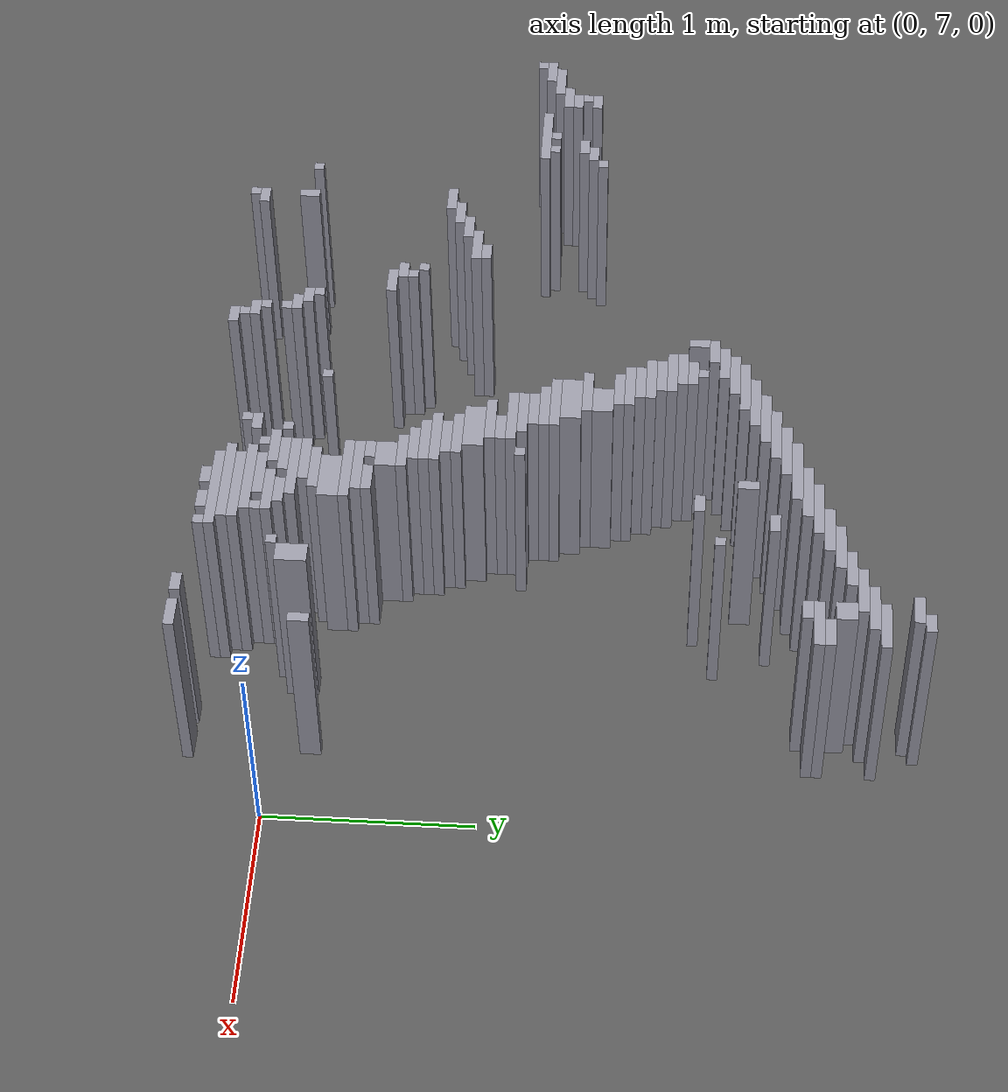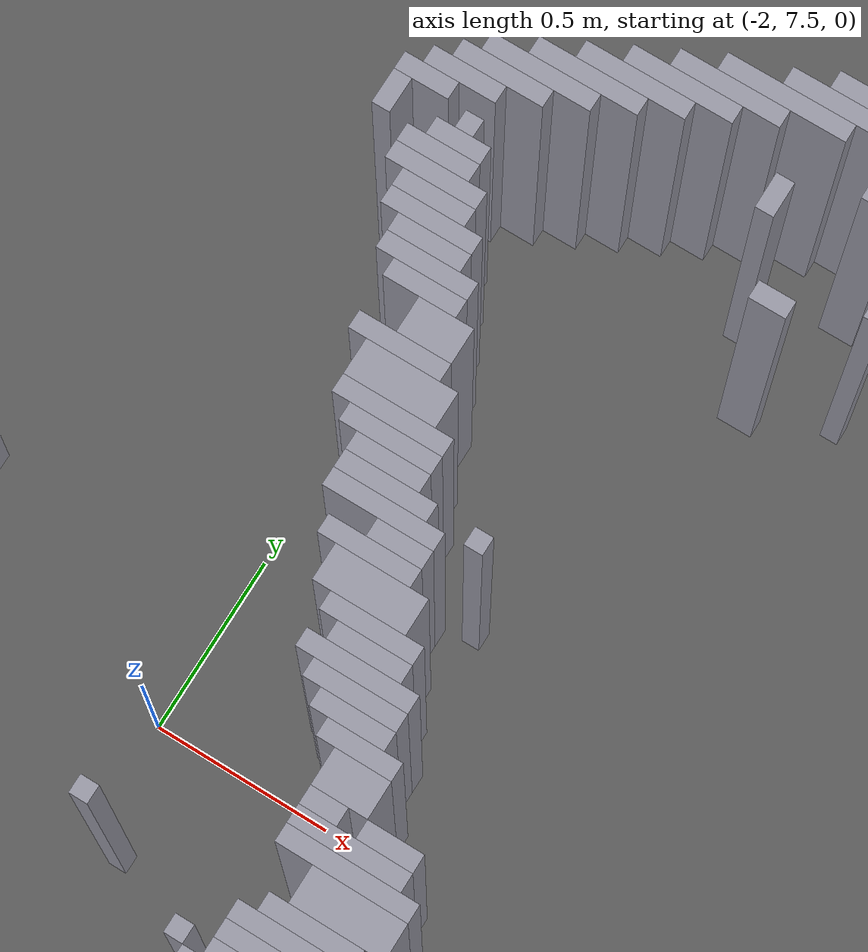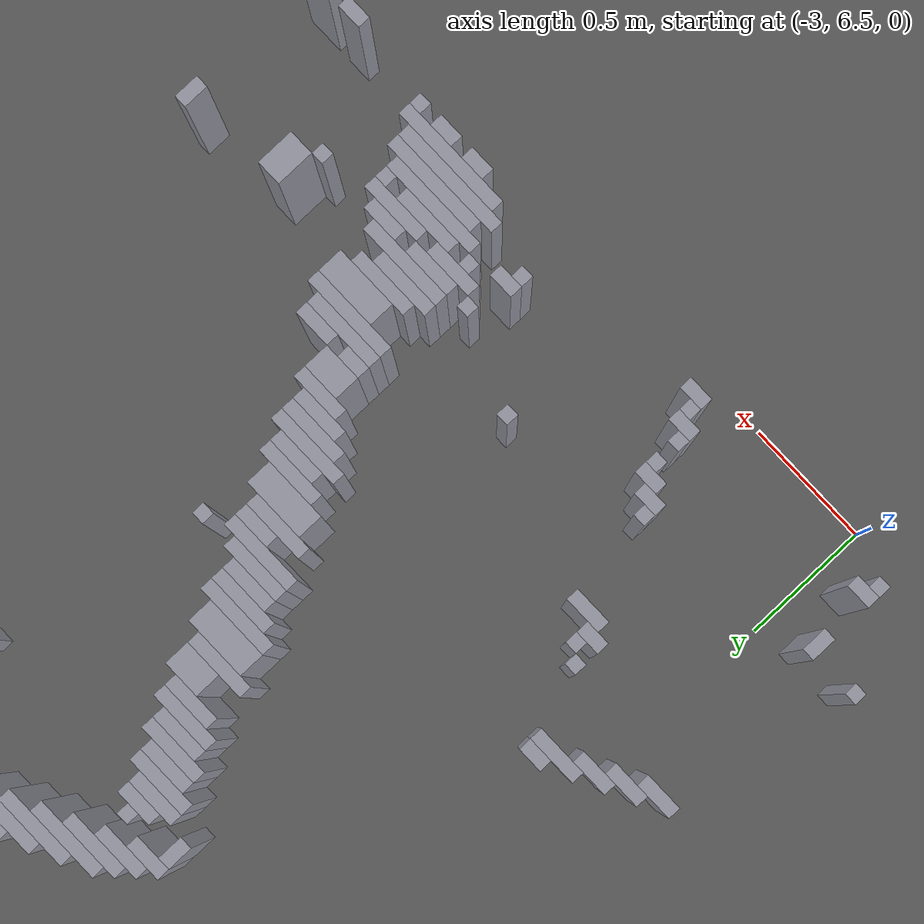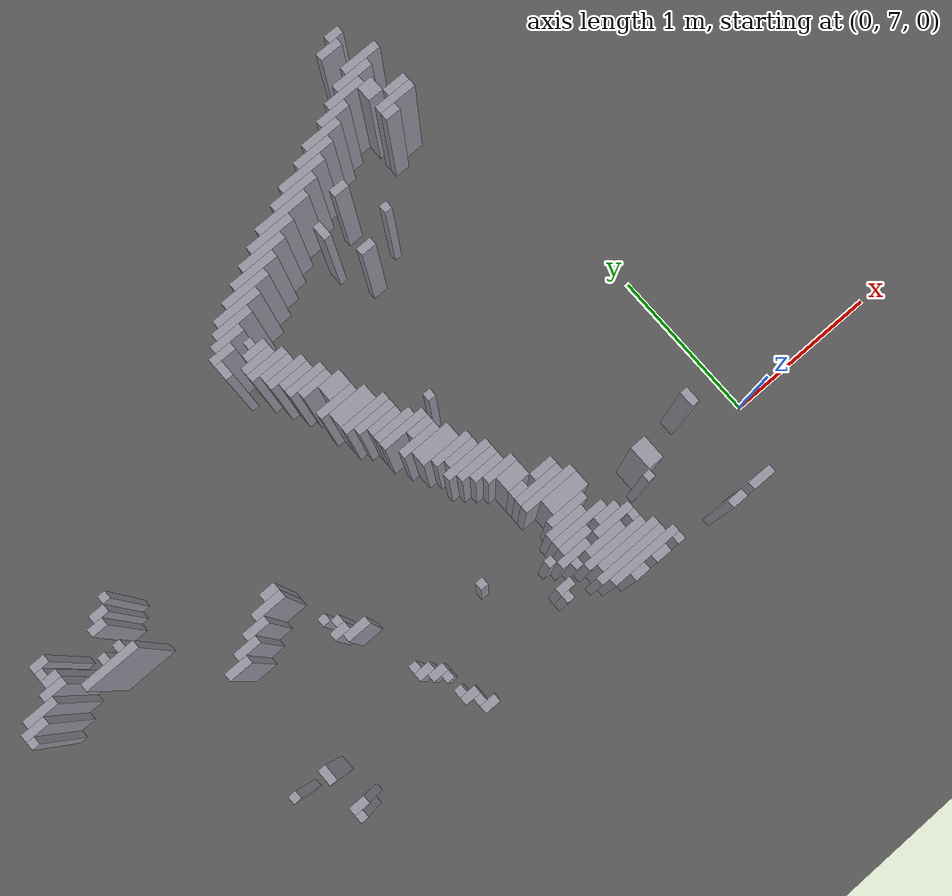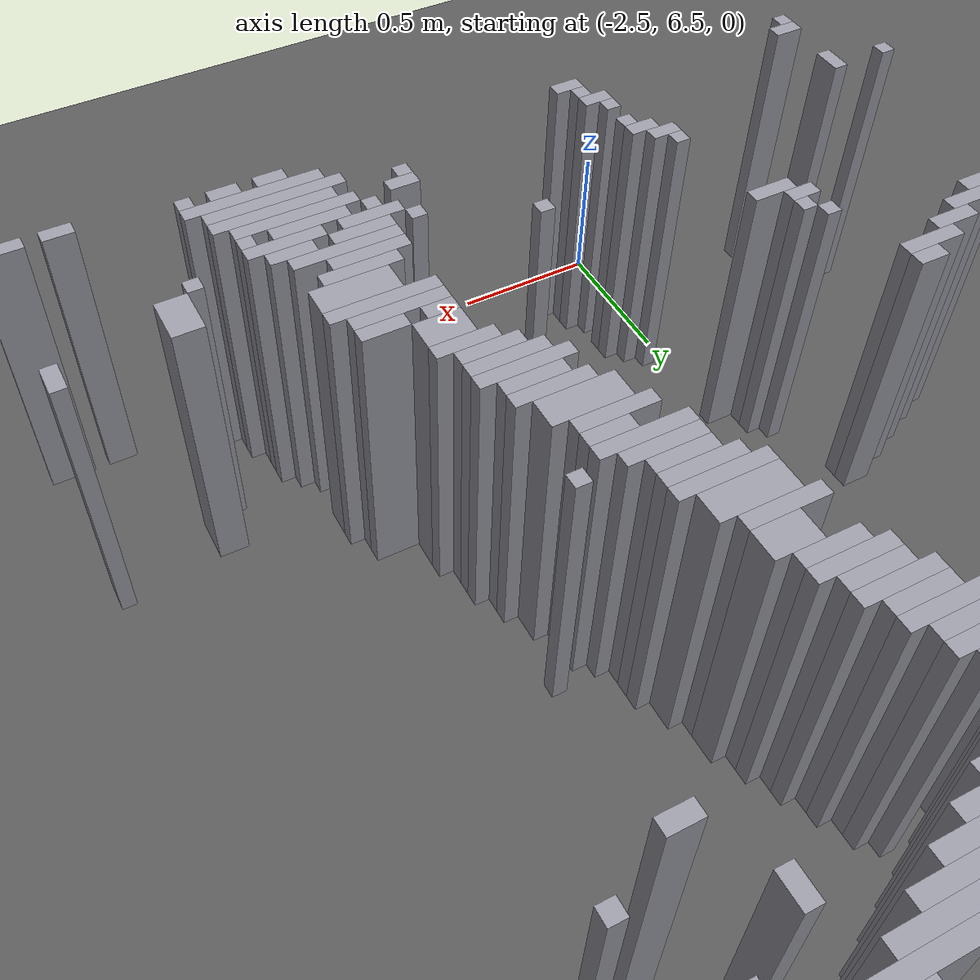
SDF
<sdf version="1.8">
 <world name="dimi">
  <model name="ground">
   <static>true</static>
   <link name="ground_link">
    <collision name="c"><geometry><plane><normal>0 0 1</normal><size>60 60</size></plane></geometry></collision>
    <visual name="v">
     <geometry><plane><normal>0 0 1</normal><size>60 60</size></plane></geometry>
     <material><ambient>0.3 0.3 0.3 1</ambient><diffuse>0.35 0.35 0.35 1</diffuse></material>
    </visual>
   </link>
  </model>
  <model name="walls">
   <static>true</static>
   <link name="wall_47">
    <pose>-0.5170 10.0200 0.5000 0 0 0</pose>
    <collision name="c"><geometry><box><size>0.1000 0.0500 1.0000</size></box></geometry></collision>
    <visual name="v">
     <geometry><box><size>0.1000 0.0500 1.0000</size></box></geometry>
     <material><ambient>0.5 0.5 0.55 1</ambient><diffuse>0.6 0.6 0.65 1</diffuse></material>
    </visual>
   </link>
   <link name="wall_51">
    <pose>-0.5920 9.9700 0.5000 0 0 0</pose>
    <collision name="c"><geometry><box><size>0.1500 0.0500 1.0000</size></box></geometry></collision>
    <visual name="v">
     <geometry><box><size>0.1500 0.0500 1.0000</size></box></geometry>
     <material><ambient>0.5 0.5 0.55 1</ambient><diffuse>0.6 0.6 0.65 1</diffuse></material>
    </visual>
   </link>
   <link name="wall_61">
    <pose>-0.4920 9.8200 0.5000 0 0 0</pose>
    <collision name="c"><geometry><box><size>0.2500 0.0500 1.0000</size></box></geometry></collision>
    <visual name="v">
     <geometry><box><size>0.2500 0.0500 1.0000</size></box></geometry>
     <material><ambient>0.5 0.5 0.55 1</ambient><diffuse>0.6 0.6 0.65 1</diffuse></material>
    </visual>
   </link>
   <link name="wall_64">
    <pose>-0.5920 9.7700 0.5000 0 0 0</pose>
    <collision name="c"><geometry><box><size>0.2500 0.0500 1.0000</size></box></geometry></collision>
    <visual name="v">
     <geometry><box><size>0.2500 0.0500 1.0000</size></box></geometry>
     <material><ambient>0.5 0.5 0.55 1</ambient><diffuse>0.6 0.6 0.65 1</diffuse></material>
    </visual>
   </link>
   <link name="wall_67">
    <pose>-0.6920 9.7200 0.5000 0 0 0</pose>
    <collision name="c"><geometry><box><size>0.2500 0.0500 1.0000</size></box></geometry></collision>
    <visual name="v">
     <geometry><box><size>0.2500 0.0500 1.0000</size></box></geometry>
     <material><ambient>0.5 0.5 0.55 1</ambient><diffuse>0.6 0.6 0.65 1</diffuse></material>
    </visual>
   </link>
   <link name="wall_70">
    <pose>-0.8170 9.6700 0.5000 0 0 0</pose>
    <collision name="c"><geometry><box><size>0.2000 0.0500 1.0000</size></box></geometry></collision>
    <visual name="v">
     <geometry><box><size>0.2000 0.0500 1.0000</size></box></geometry>
     <material><ambient>0.5 0.5 0.55 1</ambient><diffuse>0.6 0.6 0.65 1</diffuse></material>
    </visual>
   </link>
   <link name="wall_71">
    <pose>-0.5670 9.6450 0.5000 0 0 0</pose>
    <collision name="c"><geometry><box><size>0.1000 0.1000 1.0000</size></box></geometry></collision>
    <visual name="v">
     <geometry><box><size>0.1000 0.1000 1.0000</size></box></geometry>
     <material><ambient>0.5 0.5 0.55 1</ambient><diffuse>0.6 0.6 0.65 1</diffuse></material>
    </visual>
   </link>
   <link name="wall_76">
    <pose>-0.9420 9.6200 0.5000 0 0 0</pose>
    <collision name="c"><geometry><box><size>0.2500 0.0500 1.0000</size></box></geometry></collision>
    <visual name="v">
     <geometry><box><size>0.2500 0.0500 1.0000</size></box></geometry>
     <material><ambient>0.5 0.5 0.55 1</ambient><diffuse>0.6 0.6 0.65 1</diffuse></material>
    </visual>
   </link>
   <link name="wall_81">
    <pose>-1.0420 9.5700 0.5000 0 0 0</pose>
    <collision name="c"><geometry><box><size>0.2500 0.0500 1.0000</size></box></geometry></collision>
    <visual name="v">
     <geometry><box><size>0.2500 0.0500 1.0000</size></box></geometry>
     <material><ambient>0.5 0.5 0.55 1</ambient><diffuse>0.6 0.6 0.65 1</diffuse></material>
    </visual>
   </link>
   <link name="wall_82">
    <pose>-0.4420 9.5700 0.5000 0 0 0</pose>
    <collision name="c"><geometry><box><size>0.1500 0.0500 1.0000</size></box></geometry></collision>
    <visual name="v">
     <geometry><box><size>0.1500 0.0500 1.0000</size></box></geometry>
     <material><ambient>0.5 0.5 0.55 1</ambient><diffuse>0.6 0.6 0.65 1</diffuse></material>
    </visual>
   </link>
   <link name="wall_85">
    <pose>-1.1670 9.5200 0.5000 0 0 0</pose>
    <collision name="c"><geometry><box><size>0.3000 0.0500 1.0000</size></box></geometry></collision>
    <visual name="v">
     <geometry><box><size>0.3000 0.0500 1.0000</size></box></geometry>
     <material><ambient>0.5 0.5 0.55 1</ambient><diffuse>0.6 0.6 0.65 1</diffuse></material>
    </visual>
   </link>
   <link name="wall_86">
    <pose>-0.4920 9.5200 0.5000 0 0 0</pose>
    <collision name="c"><geometry><box><size>0.2500 0.0500 1.0000</size></box></geometry></collision>
    <visual name="v">
     <geometry><box><size>0.2500 0.0500 1.0000</size></box></geometry>
     <material><ambient>0.5 0.5 0.55 1</ambient><diffuse>0.6 0.6 0.65 1</diffuse></material>
    </visual>
   </link>
   <link name="wall_89">
    <pose>-1.2670 9.4700 0.5000 0 0 0</pose>
    <collision name="c"><geometry><box><size>0.3000 0.0500 1.0000</size></box></geometry></collision>
    <visual name="v">
     <geometry><box><size>0.3000 0.0500 1.0000</size></box></geometry>
     <material><ambient>0.5 0.5 0.55 1</ambient><diffuse>0.6 0.6 0.65 1</diffuse></material>
    </visual>
   </link>
   <link name="wall_90">
    <pose>-0.5670 9.4700 0.5000 0 0 0</pose>
    <collision name="c"><geometry><box><size>0.1000 0.0500 1.0000</size></box></geometry></collision>
    <visual name="v">
     <geometry><box><size>0.1000 0.0500 1.0000</size></box></geometry>
     <material><ambient>0.5 0.5 0.55 1</ambient><diffuse>0.6 0.6 0.65 1</diffuse></material>
    </visual>
   </link>
   <link name="wall_93">
    <pose>-1.3920 9.4200 0.5000 0 0 0</pose>
    <collision name="c"><geometry><box><size>0.3500 0.0500 1.0000</size></box></geometry></collision>
    <visual name="v">
     <geometry><box><size>0.3500 0.0500 1.0000</size></box></geometry>
     <material><ambient>0.5 0.5 0.55 1</ambient><diffuse>0.6 0.6 0.65 1</diffuse></material>
    </visual>
   </link>
   <link name="wall_95">
    <pose>-1.5170 9.3700 0.5000 0 0 0</pose>
    <collision name="c"><geometry><box><size>0.3000 0.0500 1.0000</size></box></geometry></collision>
    <visual name="v">
     <geometry><box><size>0.3000 0.0500 1.0000</size></box></geometry>
     <material><ambient>0.5 0.5 0.55 1</ambient><diffuse>0.6 0.6 0.65 1</diffuse></material>
    </visual>
   </link>
   <link name="wall_97">
    <pose>-1.6170 9.3200 0.5000 0 0 0</pose>
    <collision name="c"><geometry><box><size>0.3000 0.0500 1.0000</size></box></geometry></collision>
    <visual name="v">
     <geometry><box><size>0.3000 0.0500 1.0000</size></box></geometry>
     <material><ambient>0.5 0.5 0.55 1</ambient><diffuse>0.6 0.6 0.65 1</diffuse></material>
    </visual>
   </link>
   <link name="wall_98">
    <pose>-1.0670 9.3200 0.5000 0 0 0</pose>
    <collision name="c"><geometry><box><size>0.1000 0.0500 1.0000</size></box></geometry></collision>
    <visual name="v">
     <geometry><box><size>0.1000 0.0500 1.0000</size></box></geometry>
     <material><ambient>0.5 0.5 0.55 1</ambient><diffuse>0.6 0.6 0.65 1</diffuse></material>
    </visual>
   </link>
   <link name="wall_101">
    <pose>-1.7170 9.2700 0.5000 0 0 0</pose>
    <collision name="c"><geometry><box><size>0.3000 0.0500 1.0000</size></box></geometry></collision>
    <visual name="v">
     <geometry><box><size>0.3000 0.0500 1.0000</size></box></geometry>
     <material><ambient>0.5 0.5 0.55 1</ambient><diffuse>0.6 0.6 0.65 1</diffuse></material>
    </visual>
   </link>
   <link name="wall_104">
    <pose>-1.8170 9.2200 0.5000 0 0 0</pose>
    <collision name="c"><geometry><box><size>0.3000 0.0500 1.0000</size></box></geometry></collision>
    <visual name="v">
     <geometry><box><size>0.3000 0.0500 1.0000</size></box></geometry>
     <material><ambient>0.5 0.5 0.55 1</ambient><diffuse>0.6 0.6 0.65 1</diffuse></material>
    </visual>
   </link>
   <link name="wall_105">
    <pose>-1.2920 9.1950 0.5000 0 0 0</pose>
    <collision name="c"><geometry><box><size>0.0500 0.1000 1.0000</size></box></geometry></collision>
    <visual name="v">
     <geometry><box><size>0.0500 0.1000 1.0000</size></box></geometry>
     <material><ambient>0.5 0.5 0.55 1</ambient><diffuse>0.6 0.6 0.65 1</diffuse></material>
    </visual>
   </link>
   <link name="wall_108">
    <pose>-1.9170 9.1700 0.5000 0 0 0</pose>
    <collision name="c"><geometry><box><size>0.3000 0.0500 1.0000</size></box></geometry></collision>
    <visual name="v">
     <geometry><box><size>0.3000 0.0500 1.0000</size></box></geometry>
     <material><ambient>0.5 0.5 0.55 1</ambient><diffuse>0.6 0.6 0.65 1</diffuse></material>
    </visual>
   </link>
   <link name="wall_111">
    <pose>-1.9920 9.1200 0.5000 0 0 0</pose>
    <collision name="c"><geometry><box><size>0.2500 0.0500 1.0000</size></box></geometry></collision>
    <visual name="v">
     <geometry><box><size>0.2500 0.0500 1.0000</size></box></geometry>
     <material><ambient>0.5 0.5 0.55 1</ambient><diffuse>0.6 0.6 0.65 1</diffuse></material>
    </visual>
   </link>
   <link name="wall_114">
    <pose>-2.0670 9.0700 0.5000 0 0 0</pose>
    <collision name="c"><geometry><box><size>0.2000 0.0500 1.0000</size></box></geometry></collision>
    <visual name="v">
     <geometry><box><size>0.2000 0.0500 1.0000</size></box></geometry>
     <material><ambient>0.5 0.5 0.55 1</ambient><diffuse>0.6 0.6 0.65 1</diffuse></material>
    </visual>
   </link>
   <link name="wall_115">
    <pose>-0.9420 9.0700 0.5000 0 0 0</pose>
    <collision name="c"><geometry><box><size>0.0500 0.0500 1.0000</size></box></geometry></collision>
    <visual name="v">
     <geometry><box><size>0.0500 0.0500 1.0000</size></box></geometry>
     <material><ambient>0.5 0.5 0.55 1</ambient><diffuse>0.6 0.6 0.65 1</diffuse></material>
    </visual>
   </link>
   <link name="wall_118">
    <pose>-2.1420 9.0200 0.5000 0 0 0</pose>
    <collision name="c"><geometry><box><size>0.1500 0.0500 1.0000</size></box></geometry></collision>
    <visual name="v">
     <geometry><box><size>0.1500 0.0500 1.0000</size></box></geometry>
     <material><ambient>0.5 0.5 0.55 1</ambient><diffuse>0.6 0.6 0.65 1</diffuse></material>
    </visual>
   </link>
   <link name="wall_122">
    <pose>-2.1920 8.9450 0.5000 0 0 0</pose>
    <collision name="c"><geometry><box><size>0.0500 0.1000 1.0000</size></box></geometry></collision>
    <visual name="v">
     <geometry><box><size>0.0500 0.1000 1.0000</size></box></geometry>
     <material><ambient>0.5 0.5 0.55 1</ambient><diffuse>0.6 0.6 0.65 1</diffuse></material>
    </visual>
   </link>
   <link name="wall_123">
    <pose>-1.9920 8.9700 0.5000 0 0 0</pose>
    <collision name="c"><geometry><box><size>0.0500 0.0500 1.0000</size></box></geometry></collision>
    <visual name="v">
     <geometry><box><size>0.0500 0.0500 1.0000</size></box></geometry>
     <material><ambient>0.5 0.5 0.55 1</ambient><diffuse>0.6 0.6 0.65 1</diffuse></material>
    </visual>
   </link>
   <link name="wall_124">
    <pose>-1.1670 8.9700 0.5000 0 0 0</pose>
    <collision name="c"><geometry><box><size>0.1000 0.0500 1.0000</size></box></geometry></collision>
    <visual name="v">
     <geometry><box><size>0.1000 0.0500 1.0000</size></box></geometry>
     <material><ambient>0.5 0.5 0.55 1</ambient><diffuse>0.6 0.6 0.65 1</diffuse></material>
    </visual>
   </link>
   <link name="wall_127">
    <pose>-1.9920 8.9200 0.5000 0 0 0</pose>
    <collision name="c"><geometry><box><size>0.1500 0.0500 1.0000</size></box></geometry></collision>
    <visual name="v">
     <geometry><box><size>0.1500 0.0500 1.0000</size></box></geometry>
     <material><ambient>0.5 0.5 0.55 1</ambient><diffuse>0.6 0.6 0.65 1</diffuse></material>
    </visual>
   </link>
   <link name="wall_132">
    <pose>-2.0170 8.8700 0.5000 0 0 0</pose>
    <collision name="c"><geometry><box><size>0.2000 0.0500 1.0000</size></box></geometry></collision>
    <visual name="v">
     <geometry><box><size>0.2000 0.0500 1.0000</size></box></geometry>
     <material><ambient>0.5 0.5 0.55 1</ambient><diffuse>0.6 0.6 0.65 1</diffuse></material>
    </visual>
   </link>
   <link name="wall_136">
    <pose>-1.9920 8.8200 0.5000 0 0 0</pose>
    <collision name="c"><geometry><box><size>0.2500 0.0500 1.0000</size></box></geometry></collision>
    <visual name="v">
     <geometry><box><size>0.2500 0.0500 1.0000</size></box></geometry>
     <material><ambient>0.5 0.5 0.55 1</ambient><diffuse>0.6 0.6 0.65 1</diffuse></material>
    </visual>
   </link>
   <link name="wall_141">
    <pose>-1.9670 8.7700 0.5000 0 0 0</pose>
    <collision name="c"><geometry><box><size>0.2000 0.0500 1.0000</size></box></geometry></collision>
    <visual name="v">
     <geometry><box><size>0.2000 0.0500 1.0000</size></box></geometry>
     <material><ambient>0.5 0.5 0.55 1</ambient><diffuse>0.6 0.6 0.65 1</diffuse></material>
    </visual>
   </link>
   <link name="wall_146">
    <pose>-1.9420 8.7200 0.5000 0 0 0</pose>
    <collision name="c"><geometry><box><size>0.2500 0.0500 1.0000</size></box></geometry></collision>
    <visual name="v">
     <geometry><box><size>0.2500 0.0500 1.0000</size></box></geometry>
     <material><ambient>0.5 0.5 0.55 1</ambient><diffuse>0.6 0.6 0.65 1</diffuse></material>
    </visual>
   </link>
   <link name="wall_150">
    <pose>-1.9170 8.6700 0.5000 0 0 0</pose>
    <collision name="c"><geometry><box><size>0.2000 0.0500 1.0000</size></box></geometry></collision>
    <visual name="v">
     <geometry><box><size>0.2000 0.0500 1.0000</size></box></geometry>
     <material><ambient>0.5 0.5 0.55 1</ambient><diffuse>0.6 0.6 0.65 1</diffuse></material>
    </visual>
   </link>
   <link name="wall_156">
    <pose>-1.8920 8.6200 0.5000 0 0 0</pose>
    <collision name="c"><geometry><box><size>0.2500 0.0500 1.0000</size></box></geometry></collision>
    <visual name="v">
     <geometry><box><size>0.2500 0.0500 1.0000</size></box></geometry>
     <material><ambient>0.5 0.5 0.55 1</ambient><diffuse>0.6 0.6 0.65 1</diffuse></material>
    </visual>
   </link>
   <link name="wall_162">
    <pose>-1.8670 8.5700 0.5000 0 0 0</pose>
    <collision name="c"><geometry><box><size>0.2000 0.0500 1.0000</size></box></geometry></collision>
    <visual name="v">
     <geometry><box><size>0.2000 0.0500 1.0000</size></box></geometry>
     <material><ambient>0.5 0.5 0.55 1</ambient><diffuse>0.6 0.6 0.65 1</diffuse></material>
    </visual>
   </link>
   <link name="wall_168">
    <pose>-1.7920 8.4950 0.5000 0 0 0</pose>
    <collision name="c"><geometry><box><size>0.1500 0.1000 1.0000</size></box></geometry></collision>
    <visual name="v">
     <geometry><box><size>0.1500 0.1000 1.0000</size></box></geometry>
     <material><ambient>0.5 0.5 0.55 1</ambient><diffuse>0.6 0.6 0.65 1</diffuse></material>
    </visual>
   </link>
   <link name="wall_175">
    <pose>-3.4420 8.4200 0.5000 0 0 0</pose>
    <collision name="c"><geometry><box><size>0.0500 0.0500 1.0000</size></box></geometry></collision>
    <visual name="v">
     <geometry><box><size>0.0500 0.0500 1.0000</size></box></geometry>
     <material><ambient>0.5 0.5 0.55 1</ambient><diffuse>0.6 0.6 0.65 1</diffuse></material>
    </visual>
   </link>
   <link name="wall_176">
    <pose>-1.8420 8.4200 0.5000 0 0 0</pose>
    <collision name="c"><geometry><box><size>0.2500 0.0500 1.0000</size></box></geometry></collision>
    <visual name="v">
     <geometry><box><size>0.2500 0.0500 1.0000</size></box></geometry>
     <material><ambient>0.5 0.5 0.55 1</ambient><diffuse>0.6 0.6 0.65 1</diffuse></material>
    </visual>
   </link>
   <link name="wall_181">
    <pose>-3.9170 8.3700 0.5000 0 0 0</pose>
    <collision name="c"><geometry><box><size>0.1000 0.0500 1.0000</size></box></geometry></collision>
    <visual name="v">
     <geometry><box><size>0.1000 0.0500 1.0000</size></box></geometry>
     <material><ambient>0.5 0.5 0.55 1</ambient><diffuse>0.6 0.6 0.65 1</diffuse></material>
    </visual>
   </link>
   <link name="wall_182">
    <pose>-3.5170 8.3700 0.5000 0 0 0</pose>
    <collision name="c"><geometry><box><size>0.1000 0.0500 1.0000</size></box></geometry></collision>
    <visual name="v">
     <geometry><box><size>0.1000 0.0500 1.0000</size></box></geometry>
     <material><ambient>0.5 0.5 0.55 1</ambient><diffuse>0.6 0.6 0.65 1</diffuse></material>
    </visual>
   </link>
   <link name="wall_183">
    <pose>-1.7920 8.3450 0.5000 0 0 0</pose>
    <collision name="c"><geometry><box><size>0.2500 0.1000 1.0000</size></box></geometry></collision>
    <visual name="v">
     <geometry><box><size>0.2500 0.1000 1.0000</size></box></geometry>
     <material><ambient>0.5 0.5 0.55 1</ambient><diffuse>0.6 0.6 0.65 1</diffuse></material>
    </visual>
   </link>
   <link name="wall_189">
    <pose>-3.9420 8.3200 0.5000 0 0 0</pose>
    <collision name="c"><geometry><box><size>0.0500 0.0500 1.0000</size></box></geometry></collision>
    <visual name="v">
     <geometry><box><size>0.0500 0.0500 1.0000</size></box></geometry>
     <material><ambient>0.5 0.5 0.55 1</ambient><diffuse>0.6 0.6 0.65 1</diffuse></material>
    </visual>
   </link>
   <link name="wall_190">
    <pose>-3.5670 8.3200 0.5000 0 0 0</pose>
    <collision name="c"><geometry><box><size>0.1000 0.0500 1.0000</size></box></geometry></collision>
    <visual name="v">
     <geometry><box><size>0.1000 0.0500 1.0000</size></box></geometry>
     <material><ambient>0.5 0.5 0.55 1</ambient><diffuse>0.6 0.6 0.65 1</diffuse></material>
    </visual>
   </link>
   <link name="wall_195">
    <pose>-3.9170 8.2700 0.5000 0 0 0</pose>
    <collision name="c"><geometry><box><size>0.1000 0.0500 1.0000</size></box></geometry></collision>
    <visual name="v">
     <geometry><box><size>0.1000 0.0500 1.0000</size></box></geometry>
     <material><ambient>0.5 0.5 0.55 1</ambient><diffuse>0.6 0.6 0.65 1</diffuse></material>
    </visual>
   </link>
   <link name="wall_196">
    <pose>-1.7670 8.2700 0.5000 0 0 0</pose>
    <collision name="c"><geometry><box><size>0.3000 0.0500 1.0000</size></box></geometry></collision>
    <visual name="v">
     <geometry><box><size>0.3000 0.0500 1.0000</size></box></geometry>
     <material><ambient>0.5 0.5 0.55 1</ambient><diffuse>0.6 0.6 0.65 1</diffuse></material>
    </visual>
   </link>
   <link name="wall_202">
    <pose>-3.9420 8.2200 0.5000 0 0 0</pose>
    <collision name="c"><geometry><box><size>0.1500 0.0500 1.0000</size></box></geometry></collision>
    <visual name="v">
     <geometry><box><size>0.1500 0.0500 1.0000</size></box></geometry>
     <material><ambient>0.5 0.5 0.55 1</ambient><diffuse>0.6 0.6 0.65 1</diffuse></material>
    </visual>
   </link>
   <link name="wall_203">
    <pose>-1.7420 8.2200 0.5000 0 0 0</pose>
    <collision name="c"><geometry><box><size>0.2500 0.0500 1.0000</size></box></geometry></collision>
    <visual name="v">
     <geometry><box><size>0.2500 0.0500 1.0000</size></box></geometry>
     <material><ambient>0.5 0.5 0.55 1</ambient><diffuse>0.6 0.6 0.65 1</diffuse></material>
    </visual>
   </link>
   <link name="wall_208">
    <pose>-4.0670 8.1700 0.5000 0 0 0</pose>
    <collision name="c"><geometry><box><size>0.2000 0.0500 1.0000</size></box></geometry></collision>
    <visual name="v">
     <geometry><box><size>0.2000 0.0500 1.0000</size></box></geometry>
     <material><ambient>0.5 0.5 0.55 1</ambient><diffuse>0.6 0.6 0.65 1</diffuse></material>
    </visual>
   </link>
   <link name="wall_209">
    <pose>-3.6420 8.1700 0.5000 0 0 0</pose>
    <collision name="c"><geometry><box><size>0.0500 0.0500 1.0000</size></box></geometry></collision>
    <visual name="v">
     <geometry><box><size>0.0500 0.0500 1.0000</size></box></geometry>
     <material><ambient>0.5 0.5 0.55 1</ambient><diffuse>0.6 0.6 0.65 1</diffuse></material>
    </visual>
   </link>
   <link name="wall_210">
    <pose>-3.5420 8.1700 0.5000 0 0 0</pose>
    <collision name="c"><geometry><box><size>0.0500 0.0500 1.0000</size></box></geometry></collision>
    <visual name="v">
     <geometry><box><size>0.0500 0.0500 1.0000</size></box></geometry>
     <material><ambient>0.5 0.5 0.55 1</ambient><diffuse>0.6 0.6 0.65 1</diffuse></material>
    </visual>
   </link>
   <link name="wall_211">
    <pose>-1.7170 8.1700 0.5000 0 0 0</pose>
    <collision name="c"><geometry><box><size>0.2000 0.0500 1.0000</size></box></geometry></collision>
    <visual name="v">
     <geometry><box><size>0.2000 0.0500 1.0000</size></box></geometry>
     <material><ambient>0.5 0.5 0.55 1</ambient><diffuse>0.6 0.6 0.65 1</diffuse></material>
    </visual>
   </link>
   <link name="wall_215">
    <pose>-4.1420 8.1200 0.5000 0 0 0</pose>
    <collision name="c"><geometry><box><size>0.1500 0.0500 1.0000</size></box></geometry></collision>
    <visual name="v">
     <geometry><box><size>0.1500 0.0500 1.0000</size></box></geometry>
     <material><ambient>0.5 0.5 0.55 1</ambient><diffuse>0.6 0.6 0.65 1</diffuse></material>
    </visual>
   </link>
   <link name="wall_216">
    <pose>-3.6420 8.1200 0.5000 0 0 0</pose>
    <collision name="c"><geometry><box><size>0.3500 0.0500 1.0000</size></box></geometry></collision>
    <visual name="v">
     <geometry><box><size>0.3500 0.0500 1.0000</size></box></geometry>
     <material><ambient>0.5 0.5 0.55 1</ambient><diffuse>0.6 0.6 0.65 1</diffuse></material>
    </visual>
   </link>
   <link name="wall_217">
    <pose>-1.6920 8.1200 0.5000 0 0 0</pose>
    <collision name="c"><geometry><box><size>0.2500 0.0500 1.0000</size></box></geometry></collision>
    <visual name="v">
     <geometry><box><size>0.2500 0.0500 1.0000</size></box></geometry>
     <material><ambient>0.5 0.5 0.55 1</ambient><diffuse>0.6 0.6 0.65 1</diffuse></material>
    </visual>
   </link>
   <link name="wall_218">
    <pose>-1.4420 8.1200 0.5000 0 0 0</pose>
    <collision name="c"><geometry><box><size>0.0500 0.0500 1.0000</size></box></geometry></collision>
    <visual name="v">
     <geometry><box><size>0.0500 0.0500 1.0000</size></box></geometry>
     <material><ambient>0.5 0.5 0.55 1</ambient><diffuse>0.6 0.6 0.65 1</diffuse></material>
    </visual>
   </link>
   <link name="wall_222">
    <pose>-4.1920 8.0700 0.5000 0 0 0</pose>
    <collision name="c"><geometry><box><size>0.0500 0.0500 1.0000</size></box></geometry></collision>
    <visual name="v">
     <geometry><box><size>0.0500 0.0500 1.0000</size></box></geometry>
     <material><ambient>0.5 0.5 0.55 1</ambient><diffuse>0.6 0.6 0.65 1</diffuse></material>
    </visual>
   </link>
   <link name="wall_223">
    <pose>-1.6670 8.0700 0.5000 0 0 0</pose>
    <collision name="c"><geometry><box><size>0.3000 0.0500 1.0000</size></box></geometry></collision>
    <visual name="v">
     <geometry><box><size>0.3000 0.0500 1.0000</size></box></geometry>
     <material><ambient>0.5 0.5 0.55 1</ambient><diffuse>0.6 0.6 0.65 1</diffuse></material>
    </visual>
   </link>
   <link name="wall_229">
    <pose>-1.5920 8.0200 0.5000 0 0 0</pose>
    <collision name="c"><geometry><box><size>0.1500 0.0500 1.0000</size></box></geometry></collision>
    <visual name="v">
     <geometry><box><size>0.1500 0.0500 1.0000</size></box></geometry>
     <material><ambient>0.5 0.5 0.55 1</ambient><diffuse>0.6 0.6 0.65 1</diffuse></material>
    </visual>
   </link>
   <link name="wall_233">
    <pose>-1.6420 7.9700 0.5000 0 0 0</pose>
    <collision name="c"><geometry><box><size>0.2500 0.0500 1.0000</size></box></geometry></collision>
    <visual name="v">
     <geometry><box><size>0.2500 0.0500 1.0000</size></box></geometry>
     <material><ambient>0.5 0.5 0.55 1</ambient><diffuse>0.6 0.6 0.65 1</diffuse></material>
    </visual>
   </link>
   <link name="wall_237">
    <pose>-1.5920 7.8950 0.5000 0 0 0</pose>
    <collision name="c"><geometry><box><size>0.2500 0.1000 1.0000</size></box></geometry></collision>
    <visual name="v">
     <geometry><box><size>0.2500 0.1000 1.0000</size></box></geometry>
     <material><ambient>0.5 0.5 0.55 1</ambient><diffuse>0.6 0.6 0.65 1</diffuse></material>
    </visual>
   </link>
   <link name="wall_242">
    <pose>-2.7670 7.8700 0.5000 0 0 0</pose>
    <collision name="c"><geometry><box><size>0.1000 0.0500 1.0000</size></box></geometry></collision>
    <visual name="v">
     <geometry><box><size>0.1000 0.0500 1.0000</size></box></geometry>
     <material><ambient>0.5 0.5 0.55 1</ambient><diffuse>0.6 0.6 0.65 1</diffuse></material>
    </visual>
   </link>
   <link name="wall_247">
    <pose>-2.8170 7.8200 0.5000 0 0 0</pose>
    <collision name="c"><geometry><box><size>0.2000 0.0500 1.0000</size></box></geometry></collision>
    <visual name="v">
     <geometry><box><size>0.2000 0.0500 1.0000</size></box></geometry>
     <material><ambient>0.5 0.5 0.55 1</ambient><diffuse>0.6 0.6 0.65 1</diffuse></material>
    </visual>
   </link>
   <link name="wall_248">
    <pose>-1.5420 7.8200 0.5000 0 0 0</pose>
    <collision name="c"><geometry><box><size>0.2500 0.0500 1.0000</size></box></geometry></collision>
    <visual name="v">
     <geometry><box><size>0.2500 0.0500 1.0000</size></box></geometry>
     <material><ambient>0.5 0.5 0.55 1</ambient><diffuse>0.6 0.6 0.65 1</diffuse></material>
    </visual>
   </link>
   <link name="wall_254">
    <pose>-2.9420 7.7700 0.5000 0 0 0</pose>
    <collision name="c"><geometry><box><size>0.1500 0.0500 1.0000</size></box></geometry></collision>
    <visual name="v">
     <geometry><box><size>0.1500 0.0500 1.0000</size></box></geometry>
     <material><ambient>0.5 0.5 0.55 1</ambient><diffuse>0.6 0.6 0.65 1</diffuse></material>
    </visual>
   </link>
   <link name="wall_255">
    <pose>-1.5170 7.7700 0.5000 0 0 0</pose>
    <collision name="c"><geometry><box><size>0.2000 0.0500 1.0000</size></box></geometry></collision>
    <visual name="v">
     <geometry><box><size>0.2000 0.0500 1.0000</size></box></geometry>
     <material><ambient>0.5 0.5 0.55 1</ambient><diffuse>0.6 0.6 0.65 1</diffuse></material>
    </visual>
   </link>
   <link name="wall_261">
    <pose>-3.0420 7.7200 0.5000 0 0 0</pose>
    <collision name="c"><geometry><box><size>0.1500 0.0500 1.0000</size></box></geometry></collision>
    <visual name="v">
     <geometry><box><size>0.1500 0.0500 1.0000</size></box></geometry>
     <material><ambient>0.5 0.5 0.55 1</ambient><diffuse>0.6 0.6 0.65 1</diffuse></material>
    </visual>
   </link>
   <link name="wall_262">
    <pose>-1.5170 7.7200 0.5000 0 0 0</pose>
    <collision name="c"><geometry><box><size>0.3000 0.0500 1.0000</size></box></geometry></collision>
    <visual name="v">
     <geometry><box><size>0.3000 0.0500 1.0000</size></box></geometry>
     <material><ambient>0.5 0.5 0.55 1</ambient><diffuse>0.6 0.6 0.65 1</diffuse></material>
    </visual>
   </link>
   <link name="wall_269">
    <pose>-3.1420 7.6700 0.5000 0 0 0</pose>
    <collision name="c"><geometry><box><size>0.1500 0.0500 1.0000</size></box></geometry></collision>
    <visual name="v">
     <geometry><box><size>0.1500 0.0500 1.0000</size></box></geometry>
     <material><ambient>0.5 0.5 0.55 1</ambient><diffuse>0.6 0.6 0.65 1</diffuse></material>
    </visual>
   </link>
   <link name="wall_270">
    <pose>-1.4920 7.6700 0.5000 0 0 0</pose>
    <collision name="c"><geometry><box><size>0.2500 0.0500 1.0000</size></box></geometry></collision>
    <visual name="v">
     <geometry><box><size>0.2500 0.0500 1.0000</size></box></geometry>
     <material><ambient>0.5 0.5 0.55 1</ambient><diffuse>0.6 0.6 0.65 1</diffuse></material>
    </visual>
   </link>
   <link name="wall_274">
    <pose>-1.4670 7.6200 0.5000 0 0 0</pose>
    <collision name="c"><geometry><box><size>0.2000 0.0500 1.0000</size></box></geometry></collision>
    <visual name="v">
     <geometry><box><size>0.2000 0.0500 1.0000</size></box></geometry>
     <material><ambient>0.5 0.5 0.55 1</ambient><diffuse>0.6 0.6 0.65 1</diffuse></material>
    </visual>
   </link>
   <link name="wall_278">
    <pose>-2.6420 7.5700 0.5000 0 0 0</pose>
    <collision name="c"><geometry><box><size>0.0500 0.0500 1.0000</size></box></geometry></collision>
    <visual name="v">
     <geometry><box><size>0.0500 0.0500 1.0000</size></box></geometry>
     <material><ambient>0.5 0.5 0.55 1</ambient><diffuse>0.6 0.6 0.65 1</diffuse></material>
    </visual>
   </link>
   <link name="wall_279">
    <pose>-1.4170 7.5700 0.5000 0 0 0</pose>
    <collision name="c"><geometry><box><size>0.2000 0.0500 1.0000</size></box></geometry></collision>
    <visual name="v">
     <geometry><box><size>0.2000 0.0500 1.0000</size></box></geometry>
     <material><ambient>0.5 0.5 0.55 1</ambient><diffuse>0.6 0.6 0.65 1</diffuse></material>
    </visual>
   </link>
   <link name="wall_283">
    <pose>-2.5920 7.5200 0.5000 0 0 0</pose>
    <collision name="c"><geometry><box><size>0.0500 0.0500 1.0000</size></box></geometry></collision>
    <visual name="v">
     <geometry><box><size>0.0500 0.0500 1.0000</size></box></geometry>
     <material><ambient>0.5 0.5 0.55 1</ambient><diffuse>0.6 0.6 0.65 1</diffuse></material>
    </visual>
   </link>
   <link name="wall_284">
    <pose>-1.3920 7.4950 0.5000 0 0 0</pose>
    <collision name="c"><geometry><box><size>0.1500 0.1000 1.0000</size></box></geometry></collision>
    <visual name="v">
     <geometry><box><size>0.1500 0.1000 1.0000</size></box></geometry>
     <material><ambient>0.5 0.5 0.55 1</ambient><diffuse>0.6 0.6 0.65 1</diffuse></material>
    </visual>
   </link>
   <link name="wall_289">
    <pose>-2.6170 7.4700 0.5000 0 0 0</pose>
    <collision name="c"><geometry><box><size>0.1000 0.0500 1.0000</size></box></geometry></collision>
    <visual name="v">
     <geometry><box><size>0.1000 0.0500 1.0000</size></box></geometry>
     <material><ambient>0.5 0.5 0.55 1</ambient><diffuse>0.6 0.6 0.65 1</diffuse></material>
    </visual>
   </link>
   <link name="wall_295">
    <pose>-2.5420 7.4200 0.5000 0 0 0</pose>
    <collision name="c"><geometry><box><size>0.1500 0.0500 1.0000</size></box></geometry></collision>
    <visual name="v">
     <geometry><box><size>0.1500 0.0500 1.0000</size></box></geometry>
     <material><ambient>0.5 0.5 0.55 1</ambient><diffuse>0.6 0.6 0.65 1</diffuse></material>
    </visual>
   </link>
   <link name="wall_296">
    <pose>-1.4170 7.4200 0.5000 0 0 0</pose>
    <collision name="c"><geometry><box><size>0.1000 0.0500 1.0000</size></box></geometry></collision>
    <visual name="v">
     <geometry><box><size>0.1000 0.0500 1.0000</size></box></geometry>
     <material><ambient>0.5 0.5 0.55 1</ambient><diffuse>0.6 0.6 0.65 1</diffuse></material>
    </visual>
   </link>
   <link name="wall_297">
    <pose>-1.2420 7.4200 0.5000 0 0 0</pose>
    <collision name="c"><geometry><box><size>0.1500 0.0500 1.0000</size></box></geometry></collision>
    <visual name="v">
     <geometry><box><size>0.1500 0.0500 1.0000</size></box></geometry>
     <material><ambient>0.5 0.5 0.55 1</ambient><diffuse>0.6 0.6 0.65 1</diffuse></material>
    </visual>
   </link>
   <link name="wall_303">
    <pose>-1.3170 7.3700 0.5000 0 0 0</pose>
    <collision name="c"><geometry><box><size>0.3000 0.0500 1.0000</size></box></geometry></collision>
    <visual name="v">
     <geometry><box><size>0.3000 0.0500 1.0000</size></box></geometry>
     <material><ambient>0.5 0.5 0.55 1</ambient><diffuse>0.6 0.6 0.65 1</diffuse></material>
    </visual>
   </link>
   <link name="wall_308">
    <pose>-1.2920 7.3200 0.5000 0 0 0</pose>
    <collision name="c"><geometry><box><size>0.3500 0.0500 1.0000</size></box></geometry></collision>
    <visual name="v">
     <geometry><box><size>0.3500 0.0500 1.0000</size></box></geometry>
     <material><ambient>0.5 0.5 0.55 1</ambient><diffuse>0.6 0.6 0.65 1</diffuse></material>
    </visual>
   </link>
   <link name="wall_315">
    <pose>-1.2420 7.2450 0.5000 0 0 0</pose>
    <collision name="c"><geometry><box><size>0.2500 0.1000 1.0000</size></box></geometry></collision>
    <visual name="v">
     <geometry><box><size>0.2500 0.1000 1.0000</size></box></geometry>
     <material><ambient>0.5 0.5 0.55 1</ambient><diffuse>0.6 0.6 0.65 1</diffuse></material>
    </visual>
   </link>
   <link name="wall_321">
    <pose>-0.3920 7.1950 0.5000 0 0 0</pose>
    <collision name="c"><geometry><box><size>0.0500 0.1000 1.0000</size></box></geometry></collision>
    <visual name="v">
     <geometry><box><size>0.0500 0.1000 1.0000</size></box></geometry>
     <material><ambient>0.5 0.5 0.55 1</ambient><diffuse>0.6 0.6 0.65 1</diffuse></material>
    </visual>
   </link>
   <link name="wall_326">
    <pose>-1.8920 7.1700 0.5000 0 0 0</pose>
    <collision name="c"><geometry><box><size>0.0500 0.0500 1.0000</size></box></geometry></collision>
    <visual name="v">
     <geometry><box><size>0.0500 0.0500 1.0000</size></box></geometry>
     <material><ambient>0.5 0.5 0.55 1</ambient><diffuse>0.6 0.6 0.65 1</diffuse></material>
    </visual>
   </link>
   <link name="wall_327">
    <pose>-1.2920 7.1700 0.5000 0 0 0</pose>
    <collision name="c"><geometry><box><size>0.2500 0.0500 1.0000</size></box></geometry></collision>
    <visual name="v">
     <geometry><box><size>0.2500 0.0500 1.0000</size></box></geometry>
     <material><ambient>0.5 0.5 0.55 1</ambient><diffuse>0.6 0.6 0.65 1</diffuse></material>
    </visual>
   </link>
   <link name="wall_328">
    <pose>-0.7670 7.1200 0.5000 0 0 0</pose>
    <collision name="c"><geometry><box><size>0.1000 0.1500 1.0000</size></box></geometry></collision>
    <visual name="v">
     <geometry><box><size>0.1000 0.1500 1.0000</size></box></geometry>
     <material><ambient>0.5 0.5 0.55 1</ambient><diffuse>0.6 0.6 0.65 1</diffuse></material>
    </visual>
   </link>
   <link name="wall_333">
    <pose>-1.3420 7.1200 0.5000 0 0 0</pose>
    <collision name="c"><geometry><box><size>0.2500 0.0500 1.0000</size></box></geometry></collision>
    <visual name="v">
     <geometry><box><size>0.2500 0.0500 1.0000</size></box></geometry>
     <material><ambient>0.5 0.5 0.55 1</ambient><diffuse>0.6 0.6 0.65 1</diffuse></material>
    </visual>
   </link>
   <link name="wall_336">
    <pose>-2.4420 7.0700 0.5000 0 0 0</pose>
    <collision name="c"><geometry><box><size>0.0500 0.0500 1.0000</size></box></geometry></collision>
    <visual name="v">
     <geometry><box><size>0.0500 0.0500 1.0000</size></box></geometry>
     <material><ambient>0.5 0.5 0.55 1</ambient><diffuse>0.6 0.6 0.65 1</diffuse></material>
    </visual>
   </link>
   <link name="wall_337">
    <pose>-1.2920 7.0700 0.5000 0 0 0</pose>
    <collision name="c"><geometry><box><size>0.3500 0.0500 1.0000</size></box></geometry></collision>
    <visual name="v">
     <geometry><box><size>0.3500 0.0500 1.0000</size></box></geometry>
     <material><ambient>0.5 0.5 0.55 1</ambient><diffuse>0.6 0.6 0.65 1</diffuse></material>
    </visual>
   </link>
   <link name="wall_343">
    <pose>-2.4170 7.0200 0.5000 0 0 0</pose>
    <collision name="c"><geometry><box><size>0.1000 0.0500 1.0000</size></box></geometry></collision>
    <visual name="v">
     <geometry><box><size>0.1000 0.0500 1.0000</size></box></geometry>
     <material><ambient>0.5 0.5 0.55 1</ambient><diffuse>0.6 0.6 0.65 1</diffuse></material>
    </visual>
   </link>
   <link name="wall_344">
    <pose>-1.5420 7.0200 0.5000 0 0 0</pose>
    <collision name="c"><geometry><box><size>0.0500 0.0500 1.0000</size></box></geometry></collision>
    <visual name="v">
     <geometry><box><size>0.0500 0.0500 1.0000</size></box></geometry>
     <material><ambient>0.5 0.5 0.55 1</ambient><diffuse>0.6 0.6 0.65 1</diffuse></material>
    </visual>
   </link>
   <link name="wall_345">
    <pose>-1.3670 7.0200 0.5000 0 0 0</pose>
    <collision name="c"><geometry><box><size>0.2000 0.0500 1.0000</size></box></geometry></collision>
    <visual name="v">
     <geometry><box><size>0.2000 0.0500 1.0000</size></box></geometry>
     <material><ambient>0.5 0.5 0.55 1</ambient><diffuse>0.6 0.6 0.65 1</diffuse></material>
    </visual>
   </link>
   <link name="wall_346">
    <pose>-1.1420 7.0200 0.5000 0 0 0</pose>
    <collision name="c"><geometry><box><size>0.1500 0.0500 1.0000</size></box></geometry></collision>
    <visual name="v">
     <geometry><box><size>0.1500 0.0500 1.0000</size></box></geometry>
     <material><ambient>0.5 0.5 0.55 1</ambient><diffuse>0.6 0.6 0.65 1</diffuse></material>
    </visual>
   </link>
   <link name="wall_347">
    <pose>-0.8420 7.0200 0.5000 0 0 0</pose>
    <collision name="c"><geometry><box><size>0.0500 0.0500 1.0000</size></box></geometry></collision>
    <visual name="v">
     <geometry><box><size>0.0500 0.0500 1.0000</size></box></geometry>
     <material><ambient>0.5 0.5 0.55 1</ambient><diffuse>0.6 0.6 0.65 1</diffuse></material>
    </visual>
   </link>
   <link name="wall_354">
    <pose>-3.3420 6.9700 0.5000 0 0 0</pose>
    <collision name="c"><geometry><box><size>0.0500 0.0500 1.0000</size></box></geometry></collision>
    <visual name="v">
     <geometry><box><size>0.0500 0.0500 1.0000</size></box></geometry>
     <material><ambient>0.5 0.5 0.55 1</ambient><diffuse>0.6 0.6 0.65 1</diffuse></material>
    </visual>
   </link>
   <link name="wall_355">
    <pose>-3.1420 6.9450 0.5000 0 0 0</pose>
    <collision name="c"><geometry><box><size>0.0500 0.1000 1.0000</size></box></geometry></collision>
    <visual name="v">
     <geometry><box><size>0.0500 0.1000 1.0000</size></box></geometry>
     <material><ambient>0.5 0.5 0.55 1</ambient><diffuse>0.6 0.6 0.65 1</diffuse></material>
    </visual>
   </link>
   <link name="wall_356">
    <pose>-2.3670 6.9700 0.5000 0 0 0</pose>
    <collision name="c"><geometry><box><size>0.1000 0.0500 1.0000</size></box></geometry></collision>
    <visual name="v">
     <geometry><box><size>0.1000 0.0500 1.0000</size></box></geometry>
     <material><ambient>0.5 0.5 0.55 1</ambient><diffuse>0.6 0.6 0.65 1</diffuse></material>
    </visual>
   </link>
   <link name="wall_357">
    <pose>-1.4170 6.9700 0.5000 0 0 0</pose>
    <collision name="c"><geometry><box><size>0.2000 0.0500 1.0000</size></box></geometry></collision>
    <visual name="v">
     <geometry><box><size>0.2000 0.0500 1.0000</size></box></geometry>
     <material><ambient>0.5 0.5 0.55 1</ambient><diffuse>0.6 0.6 0.65 1</diffuse></material>
    </visual>
   </link>
   <link name="wall_358">
    <pose>-1.1420 6.9700 0.5000 0 0 0</pose>
    <collision name="c"><geometry><box><size>0.2500 0.0500 1.0000</size></box></geometry></collision>
    <visual name="v">
     <geometry><box><size>0.2500 0.0500 1.0000</size></box></geometry>
     <material><ambient>0.5 0.5 0.55 1</ambient><diffuse>0.6 0.6 0.65 1</diffuse></material>
    </visual>
   </link>
   <link name="wall_363">
    <pose>-2.3420 6.9200 0.5000 0 0 0</pose>
    <collision name="c"><geometry><box><size>0.0500 0.0500 1.0000</size></box></geometry></collision>
    <visual name="v">
     <geometry><box><size>0.0500 0.0500 1.0000</size></box></geometry>
     <material><ambient>0.5 0.5 0.55 1</ambient><diffuse>0.6 0.6 0.65 1</diffuse></material>
    </visual>
   </link>
   <link name="wall_364">
    <pose>-1.4420 6.9200 0.5000 0 0 0</pose>
    <collision name="c"><geometry><box><size>0.0500 0.0500 1.0000</size></box></geometry></collision>
    <visual name="v">
     <geometry><box><size>0.0500 0.0500 1.0000</size></box></geometry>
     <material><ambient>0.5 0.5 0.55 1</ambient><diffuse>0.6 0.6 0.65 1</diffuse></material>
    </visual>
   </link>
   <link name="wall_365">
    <pose>-1.2420 6.9200 0.5000 0 0 0</pose>
    <collision name="c"><geometry><box><size>0.2500 0.0500 1.0000</size></box></geometry></collision>
    <visual name="v">
     <geometry><box><size>0.2500 0.0500 1.0000</size></box></geometry>
     <material><ambient>0.5 0.5 0.55 1</ambient><diffuse>0.6 0.6 0.65 1</diffuse></material>
    </visual>
   </link>
   <link name="wall_366">
    <pose>-1.0420 6.9200 0.5000 0 0 0</pose>
    <collision name="c"><geometry><box><size>0.0500 0.0500 1.0000</size></box></geometry></collision>
    <visual name="v">
     <geometry><box><size>0.0500 0.0500 1.0000</size></box></geometry>
     <material><ambient>0.5 0.5 0.55 1</ambient><diffuse>0.6 0.6 0.65 1</diffuse></material>
    </visual>
   </link>
   <link name="wall_371">
    <pose>-1.5670 6.8700 0.5000 0 0 0</pose>
    <collision name="c"><geometry><box><size>0.1000 0.0500 1.0000</size></box></geometry></collision>
    <visual name="v">
     <geometry><box><size>0.1000 0.0500 1.0000</size></box></geometry>
     <material><ambient>0.5 0.5 0.55 1</ambient><diffuse>0.6 0.6 0.65 1</diffuse></material>
    </visual>
   </link>
   <link name="wall_372">
    <pose>-1.2170 6.8700 0.5000 0 0 0</pose>
    <collision name="c"><geometry><box><size>0.4000 0.0500 1.0000</size></box></geometry></collision>
    <visual name="v">
     <geometry><box><size>0.4000 0.0500 1.0000</size></box></geometry>
     <material><ambient>0.5 0.5 0.55 1</ambient><diffuse>0.6 0.6 0.65 1</diffuse></material>
    </visual>
   </link>
   <link name="wall_377">
    <pose>-2.3420 6.8200 0.5000 0 0 0</pose>
    <collision name="c"><geometry><box><size>0.0500 0.0500 1.0000</size></box></geometry></collision>
    <visual name="v">
     <geometry><box><size>0.0500 0.0500 1.0000</size></box></geometry>
     <material><ambient>0.5 0.5 0.55 1</ambient><diffuse>0.6 0.6 0.65 1</diffuse></material>
    </visual>
   </link>
   <link name="wall_378">
    <pose>-1.5920 6.8200 0.5000 0 0 0</pose>
    <collision name="c"><geometry><box><size>0.0500 0.0500 1.0000</size></box></geometry></collision>
    <visual name="v">
     <geometry><box><size>0.0500 0.0500 1.0000</size></box></geometry>
     <material><ambient>0.5 0.5 0.55 1</ambient><diffuse>0.6 0.6 0.65 1</diffuse></material>
    </visual>
   </link>
   <link name="wall_379">
    <pose>-1.1670 6.8200 0.5000 0 0 0</pose>
    <collision name="c"><geometry><box><size>0.4000 0.0500 1.0000</size></box></geometry></collision>
    <visual name="v">
     <geometry><box><size>0.4000 0.0500 1.0000</size></box></geometry>
     <material><ambient>0.5 0.5 0.55 1</ambient><diffuse>0.6 0.6 0.65 1</diffuse></material>
    </visual>
   </link>
   <link name="wall_384">
    <pose>-2.3170 6.7700 0.5000 0 0 0</pose>
    <collision name="c"><geometry><box><size>0.1000 0.0500 1.0000</size></box></geometry></collision>
    <visual name="v">
     <geometry><box><size>0.1000 0.0500 1.0000</size></box></geometry>
     <material><ambient>0.5 0.5 0.55 1</ambient><diffuse>0.6 0.6 0.65 1</diffuse></material>
    </visual>
   </link>
   <link name="wall_385">
    <pose>-1.1920 6.7700 0.5000 0 0 0</pose>
    <collision name="c"><geometry><box><size>0.4500 0.0500 1.0000</size></box></geometry></collision>
    <visual name="v">
     <geometry><box><size>0.4500 0.0500 1.0000</size></box></geometry>
     <material><ambient>0.5 0.5 0.55 1</ambient><diffuse>0.6 0.6 0.65 1</diffuse></material>
    </visual>
   </link>
   <link name="wall_392">
    <pose>-3.1170 6.7200 0.5000 0 0 0</pose>
    <collision name="c"><geometry><box><size>0.1000 0.0500 1.0000</size></box></geometry></collision>
    <visual name="v">
     <geometry><box><size>0.1000 0.0500 1.0000</size></box></geometry>
     <material><ambient>0.5 0.5 0.55 1</ambient><diffuse>0.6 0.6 0.65 1</diffuse></material>
    </visual>
   </link>
   <link name="wall_393">
    <pose>-2.2920 6.7200 0.5000 0 0 0</pose>
    <collision name="c"><geometry><box><size>0.0500 0.0500 1.0000</size></box></geometry></collision>
    <visual name="v">
     <geometry><box><size>0.0500 0.0500 1.0000</size></box></geometry>
     <material><ambient>0.5 0.5 0.55 1</ambient><diffuse>0.6 0.6 0.65 1</diffuse></material>
    </visual>
   </link>
   <link name="wall_394">
    <pose>-1.1420 6.7200 0.5000 0 0 0</pose>
    <collision name="c"><geometry><box><size>0.4500 0.0500 1.0000</size></box></geometry></collision>
    <visual name="v">
     <geometry><box><size>0.4500 0.0500 1.0000</size></box></geometry>
     <material><ambient>0.5 0.5 0.55 1</ambient><diffuse>0.6 0.6 0.65 1</diffuse></material>
    </visual>
   </link>
   <link name="wall_402">
    <pose>-3.1420 6.6700 0.5000 0 0 0</pose>
    <collision name="c"><geometry><box><size>0.0500 0.0500 1.0000</size></box></geometry></collision>
    <visual name="v">
     <geometry><box><size>0.0500 0.0500 1.0000</size></box></geometry>
     <material><ambient>0.5 0.5 0.55 1</ambient><diffuse>0.6 0.6 0.65 1</diffuse></material>
    </visual>
   </link>
   <link name="wall_403">
    <pose>-2.2670 6.6700 0.5000 0 0 0</pose>
    <collision name="c"><geometry><box><size>0.1000 0.0500 1.0000</size></box></geometry></collision>
    <visual name="v">
     <geometry><box><size>0.1000 0.0500 1.0000</size></box></geometry>
     <material><ambient>0.5 0.5 0.55 1</ambient><diffuse>0.6 0.6 0.65 1</diffuse></material>
    </visual>
   </link>
   <link name="wall_404">
    <pose>-1.2170 6.6700 0.5000 0 0 0</pose>
    <collision name="c"><geometry><box><size>0.1000 0.0500 1.0000</size></box></geometry></collision>
    <visual name="v">
     <geometry><box><size>0.1000 0.0500 1.0000</size></box></geometry>
     <material><ambient>0.5 0.5 0.55 1</ambient><diffuse>0.6 0.6 0.65 1</diffuse></material>
    </visual>
   </link>
   <link name="wall_405">
    <pose>-1.0670 6.6700 0.5000 0 0 0</pose>
    <collision name="c"><geometry><box><size>0.1000 0.0500 1.0000</size></box></geometry></collision>
    <visual name="v">
     <geometry><box><size>0.1000 0.0500 1.0000</size></box></geometry>
     <material><ambient>0.5 0.5 0.55 1</ambient><diffuse>0.6 0.6 0.65 1</diffuse></material>
    </visual>
   </link>
   <link name="wall_406">
    <pose>-0.9420 6.6700 0.5000 0 0 0</pose>
    <collision name="c"><geometry><box><size>0.0500 0.0500 1.0000</size></box></geometry></collision>
    <visual name="v">
     <geometry><box><size>0.0500 0.0500 1.0000</size></box></geometry>
     <material><ambient>0.5 0.5 0.55 1</ambient><diffuse>0.6 0.6 0.65 1</diffuse></material>
    </visual>
   </link>
   <link name="wall_418">
    <pose>-0.5670 6.6200 0.5000 0 0 0</pose>
    <collision name="c"><geometry><box><size>0.1000 0.0500 1.0000</size></box></geometry></collision>
    <visual name="v">
     <geometry><box><size>0.1000 0.0500 1.0000</size></box></geometry>
     <material><ambient>0.5 0.5 0.55 1</ambient><diffuse>0.6 0.6 0.65 1</diffuse></material>
    </visual>
   </link>
   <link name="wall_419">
    <pose>-0.3920 6.6200 0.5000 0 0 0</pose>
    <collision name="c"><geometry><box><size>0.1500 0.0500 1.0000</size></box></geometry></collision>
    <visual name="v">
     <geometry><box><size>0.1500 0.0500 1.0000</size></box></geometry>
     <material><ambient>0.5 0.5 0.55 1</ambient><diffuse>0.6 0.6 0.65 1</diffuse></material>
    </visual>
   </link>
  </model>
 </world>
</sdf>
